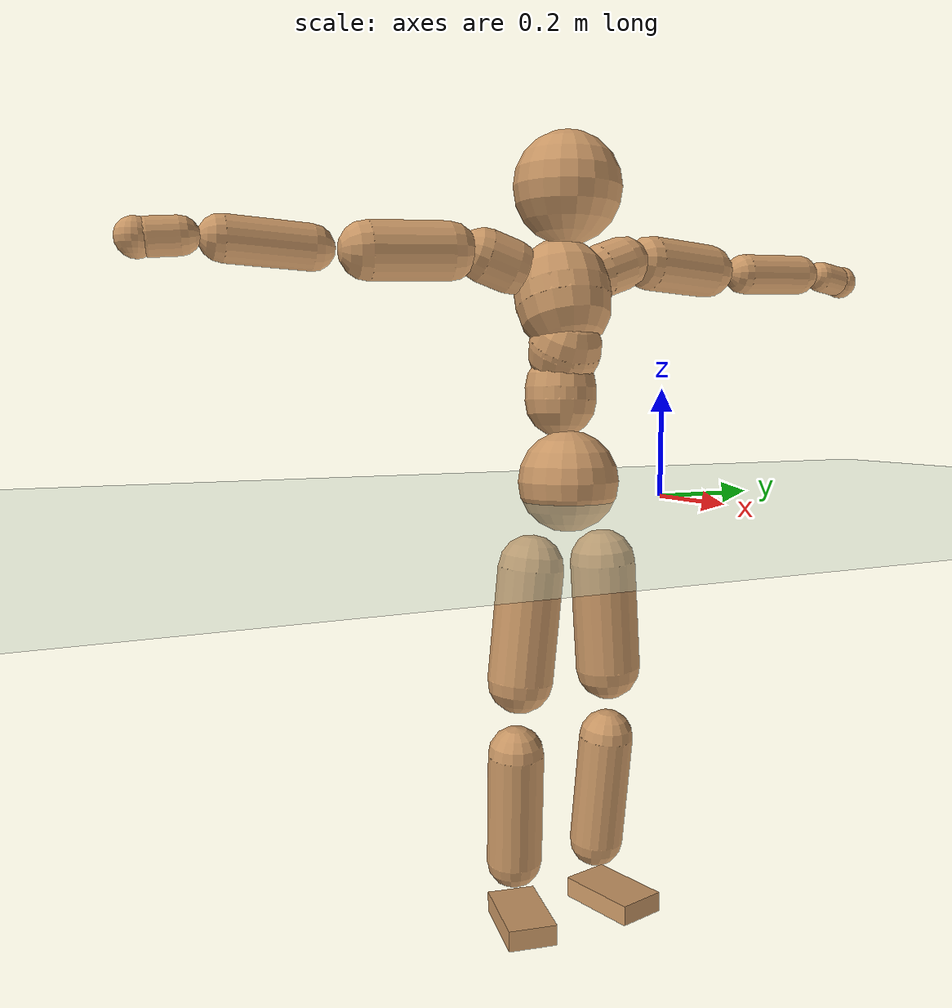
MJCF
<mujoco model="humanoid">
  <compiler coordinate="local"/>
  <default>
    <joint damping="0.0" armature="0.01" stiffness="0.0" limited="true"/>
    <geom conaffinity="1" condim="3" contype="7" margin="0.001" rgba="0.8 0.6 .4 1"/>
  </default>
  <asset>
    <texture type="skybox" builtin="gradient" rgb1=".4 .5 .6" rgb2="0 0 0" width="100" height="100"/>
    <texture builtin="flat" height="1278" mark="cross" markrgb="1 1 1" name="texgeom" random="0.01" rgb1="0.8 0.6 0.4" rgb2="0.8 0.6 0.4" type="cube" width="127"/>
    <texture builtin="checker" height="100" name="texplane" rgb1="0 0 0" rgb2="0.8 0.8 0.8" type="2d" width="100"/>
    <material name="MatPlane" reflectance="0.5" shininess="1" specular="1" texrepeat="60 60" texture="texplane"/>
    <material name="geom" texture="texgeom" texuniform="true"/>
  </asset>
  <worldbody>
    <light cutoff="100" diffuse="1 1 1" dir="-0 0 -1.3" directional="true" exponent="1" pos="0 0 1.3" specular=".1 .1 .1"/>
    <geom conaffinity="1" condim="3" name="floor" pos="0 0 0" rgba="0.8 0.9 0.8 1" size="100 100 .2" type="plane" material="MatPlane"/>
    <body name="Pelvis" pos="-0.0012 -0.2001 0.0342">
      <freejoint name="Pelvis"/>
      <geom type="sphere" contype="1" conaffinity="1" density="500" size="0.0923" pos="0.0000 0.0000 0.0000" name="Pelvis"/>
      <body name="L_Hip" pos="-0.0024 0.0704 -0.0852">
        <joint name="L_Hip_x" type="hinge" pos="0 0 0" axis="1 0 0" stiffness="800" damping="80" armature="0.02" range="-180.0000 180.0000"/>
        <joint name="L_Hip_y" type="hinge" pos="0 0 0" axis="0 1 0" stiffness="800" damping="80" armature="0.02" range="-180.0000 180.0000"/>
        <joint name="L_Hip_z" type="hinge" pos="0 0 0" axis="0 0 1" stiffness="800" damping="80" armature="0.02" range="-180.0000 180.0000"/>
        <geom type="capsule" contype="1" conaffinity="1" density="500" fromto="-0.0018 0.0055 -0.0684 -0.0071 0.0221 -0.2737" size="0.061" name="L_Hip"/>
        <body name="L_Knee" pos="-0.0088 0.0276 -0.3422">
          <joint name="L_Knee_x" type="hinge" pos="0 0 0" axis="1 0 0" stiffness="800" damping="80" armature="0.02" range="-180.0000 180.0000"/>
          <joint name="L_Knee_y" type="hinge" pos="0 0 0" axis="0 1 0" stiffness="800" damping="80" armature="0.02" range="-180.0000 180.0000"/>
          <joint name="L_Knee_z" type="hinge" pos="0 0 0" axis="0 0 1" stiffness="800" damping="80" armature="0.02" range="-180.0000 180.0000"/>
          <geom type="capsule" contype="1" conaffinity="1" density="500" fromto="-0.0082 -0.0021 -0.0722 -0.0330 -0.0084 -0.2887" size="0.052" name="L_Knee"/>
          <body name="L_Ankle" pos="-0.0412 -0.0105 -0.3609">
            <joint name="L_Ankle_x" type="hinge" pos="0 0 0" axis="1 0 0" stiffness="800" damping="80" armature="0.02" range="-180.0000 180.0000"/>
            <joint name="L_Ankle_y" type="hinge" pos="0 0 0" axis="0 1 0" stiffness="800" damping="80" armature="0.02" range="-180.0000 180.0000"/>
            <joint name="L_Ankle_z" type="hinge" pos="0 0 0" axis="0 0 1" stiffness="800" damping="80" armature="0.02" range="-180.0000 180.0000"/>
            <geom type="box" contype="1" conaffinity="1" density="500" pos="0.0555 0.0125 -0.0263" size="0.0812 0.0463 0.019" quat="0.9939 0.0000 0.0000 0.1105" name="L_Ankle"/>
            <body name="L_Toe" pos="0.1111 0.025 -0.0526">
              <joint name="L_Toe_x" type="hinge" pos="0 0 0" axis="1 0 0" stiffness="500" damping="50" armature="0.02" range="-180.0000 180.0000"/>
              <joint name="L_Toe_y" type="hinge" pos="0 0 0" axis="0 1 0" stiffness="500" damping="50" armature="0.02" range="-180.0000 180.0000"/>
              <joint name="L_Toe_z" type="hinge" pos="0 0 0" axis="0 0 1" stiffness="500" damping="50" armature="0.02" range="-180.0000 180.0000"/>
              <geom type="box" contype="1" conaffinity="1" density="500" pos="0.0000 0.0000 0.0264" size="0.0009 0.0023 0.001" quat="0.9931 0.0000 0.0000 0.1169" name="L_Toe"/>
            </body>
          </body>
        </body>
      </body>
      <body name="R_Hip" pos="0 -0.0686 -0.0849">
        <joint name="R_Hip_x" type="hinge" pos="0 0 0" axis="1 0 0" stiffness="800" damping="80" armature="0.02" range="-180.0000 180.0000"/>
        <joint name="R_Hip_y" type="hinge" pos="0 0 0" axis="0 1 0" stiffness="800" damping="80" armature="0.02" range="-180.0000 180.0000"/>
        <joint name="R_Hip_z" type="hinge" pos="0 0 0" axis="0 0 1" stiffness="800" damping="80" armature="0.02" range="-180.0000 180.0000"/>
        <geom type="capsule" contype="1" conaffinity="1" density="500" fromto="-0.0021 -0.0064 -0.0694 -0.0085 -0.0257 -0.2776" size="0.0604" name="R_Hip"/>
        <body name="R_Knee" pos="-0.0106 -0.0322 -0.3471">
          <joint name="R_Knee_x" type="hinge" pos="0 0 0" axis="1 0 0" stiffness="800" damping="80" armature="0.02" range="-180.0000 180.0000"/>
          <joint name="R_Knee_y" type="hinge" pos="0 0 0" axis="0 1 0" stiffness="800" damping="80" armature="0.02" range="-180.0000 180.0000"/>
          <joint name="R_Knee_z" type="hinge" pos="0 0 0" axis="0 0 1" stiffness="800" damping="80" armature="0.02" range="-180.0000 180.0000"/>
          <geom type="capsule" contype="1" conaffinity="1" density="500" fromto="-0.0082 0.0024 -0.0723 -0.0327 0.0096 -0.2893" size="0.0522" name="R_Knee"/>
          <body name="R_Ankle" pos="-0.0409 0.012 -0.3617">
            <joint name="R_Ankle_x" type="hinge" pos="0 0 0" axis="1 0 0" stiffness="800" damping="80" armature="0.02" range="-180.0000 180.0000"/>
            <joint name="R_Ankle_y" type="hinge" pos="0 0 0" axis="0 1 0" stiffness="800" damping="80" armature="0.02" range="-180.0000 180.0000"/>
            <joint name="R_Ankle_z" type="hinge" pos="0 0 0" axis="0 0 1" stiffness="800" damping="80" armature="0.02" range="-180.0000 180.0000"/>
            <geom type="box" contype="1" conaffinity="1" density="500" pos="0.0572 -0.0114 -0.0218" size="0.0815 0.0452 0.0192" quat="0.9952 0.0000 0.0000 -0.0980" name="R_Ankle"/>
            <body name="R_Toe" pos="0.1144 -0.0228 -0.0436">
              <joint name="R_Toe_x" type="hinge" pos="0 0 0" axis="1 0 0" stiffness="500" damping="50" armature="0.02" range="-180.0000 180.0000"/>
              <joint name="R_Toe_y" type="hinge" pos="0 0 0" axis="0 1 0" stiffness="500" damping="50" armature="0.02" range="-180.0000 180.0000"/>
              <joint name="R_Toe_z" type="hinge" pos="0 0 0" axis="0 0 1" stiffness="500" damping="50" armature="0.02" range="-180.0000 180.0000"/>
              <geom type="box" contype="1" conaffinity="1" density="500" pos="0.0000 0.0000 0.0233" size="0.0009 0.0023 0.001" quat="0.9961 0.0000 0.0000 -0.0881" name="R_Toe"/>
            </body>
          </body>
        </body>
      </body>
      <body name="Torso" pos="-0.0264 -0.0021 0.0989">
        <joint name="Torso_x" type="hinge" pos="0 0 0" axis="1 0 0" stiffness="1000" damping="100" armature="0.02" range="-180.0000 180.0000"/>
        <joint name="Torso_y" type="hinge" pos="0 0 0" axis="0 1 0" stiffness="1000" damping="100" armature="0.02" range="-180.0000 180.0000"/>
        <joint name="Torso_z" type="hinge" pos="0 0 0" axis="0 0 1" stiffness="1000" damping="100" armature="0.02" range="-180.0000 180.0000"/>
        <geom type="capsule" contype="1" conaffinity="1" density="500" fromto="-0.0025 0.0018 0.0690 -0.0017 0.0012 0.0460" size="0.065565" name="Torso"/>
        <body name="Spine" pos="-0.0042 0.003 0.115">
          <joint name="Spine_x" type="hinge" pos="0 0 0" axis="1 0 0" stiffness="1000" damping="100" armature="0.02" range="-180.0000 180.0000"/>
          <joint name="Spine_y" type="hinge" pos="0 0 0" axis="0 1 0" stiffness="1000" damping="100" armature="0.02" range="-180.0000 180.0000"/>
          <joint name="Spine_z" type="hinge" pos="0 0 0" axis="0 0 1" stiffness="1000" damping="100" armature="0.02" range="-180.0000 180.0000"/>
          <geom type="capsule" contype="1" conaffinity="1" density="500" fromto="0.0159 0.0013 0.0276 0.0106 0.0009 0.0184" size="0.066309" name="Spine"/>
          <body name="Chest" pos="0.0266 0.0022 0.046">
            <joint name="Chest_x" type="hinge" pos="0 0 0" axis="1 0 0" stiffness="1000" damping="100" armature="0.02" range="-180.0000 180.0000"/>
            <joint name="Chest_y" type="hinge" pos="0 0 0" axis="0 1 0" stiffness="1000" damping="100" armature="0.02" range="-180.0000 180.0000"/>
            <joint name="Chest_z" type="hinge" pos="0 0 0" axis="0 0 1" stiffness="1000" damping="100" armature="0.02" range="-180.0000 180.0000"/>
            <geom type="capsule" contype="1" conaffinity="1" density="500" fromto="-0.0268 -0.0009 0.0861 -0.0179 -0.0006 0.0574" size="0.08742" name="Chest"/>
            <body name="Neck" pos="-0.052 -0.0023 0.2008">
              <joint name="Neck_x" type="hinge" pos="0 0 0" axis="1 0 0" stiffness="500" damping="50" armature="0.02" range="-180.0000 180.0000"/>
              <joint name="Neck_y" type="hinge" pos="0 0 0" axis="0 1 0" stiffness="500" damping="50" armature="0.02" range="-180.0000 180.0000"/>
              <joint name="Neck_z" type="hinge" pos="0 0 0" axis="0 0 1" stiffness="500" damping="50" armature="0.02" range="-180.0000 180.0000"/>
              <geom type="capsule" contype="1" conaffinity="1" density="500" fromto="0.0093 0.0004 0.0112 0.0371 0.0014 0.0449" size="0.037572" name="Neck"/>
              <body name="Head" pos="0.0464 0.0018 0.0561">
                <joint name="Head_x" type="hinge" pos="0 0 0" axis="1 0 0" stiffness="500" damping="50" armature="0.02" range="-180.0000 180.0000"/>
                <joint name="Head_y" type="hinge" pos="0 0 0" axis="0 1 0" stiffness="500" damping="50" armature="0.02" range="-180.0000 180.0000"/>
                <joint name="Head_z" type="hinge" pos="0 0 0" axis="0 0 1" stiffness="500" damping="50" armature="0.02" range="-180.0000 180.0000"/>
                <geom type="sphere" contype="1" conaffinity="1" density="500" size="0.0976" pos="0.0000 0.0000 0.0000" name="Head"/>
              </body>
            </body>
            <body name="L_Thorax" pos="-0.039 0.0718 0.1154">
              <joint name="L_Thorax_x" type="hinge" pos="0 0 0" axis="1 0 0" stiffness="500" damping="50" armature="0.02" range="-180.0000 180.0000"/>
              <joint name="L_Thorax_y" type="hinge" pos="0 0 0" axis="0 1 0" stiffness="500" damping="50" armature="0.02" range="-180.0000 180.0000"/>
              <joint name="L_Thorax_z" type="hinge" pos="0 0 0" axis="0 0 1" stiffness="500" damping="50" armature="0.02" range="-180.0000 180.0000"/>
              <geom type="capsule" contype="1" conaffinity="1" density="500" fromto="-0.0015 0.0166 0.0060 -0.0058 0.0663 0.0240" size="0.0488" name="L_Thorax"/>
              <body name="L_Shoulder" pos="-0.0073 0.0829 0.03">
                <joint name="L_Shoulder_x" type="hinge" pos="0 0 0" axis="1 0 0" stiffness="500" damping="50" armature="0.02" range="-720.0000 720.0000"/>
                <joint name="L_Shoulder_y" type="hinge" pos="0 0 0" axis="0 1 0" stiffness="500" damping="50" armature="0.02" range="-720.0000 720.0000"/>
                <joint name="L_Shoulder_z" type="hinge" pos="0 0 0" axis="0 0 1" stiffness="500" damping="50" armature="0.02" range="-720.0000 720.0000"/>
                <geom type="capsule" contype="1" conaffinity="1" density="500" fromto="-0.0055 0.0483 -0.0019 -0.0220 0.1930 -0.0078" size="0.0503" name="L_Shoulder"/>
                <body name="L_Elbow" pos="-0.0275 0.2413 -0.0097">
                  <joint name="L_Elbow_x" type="hinge" pos="0 0 0" axis="1 0 0" stiffness="500" damping="50" armature="0.02" range="-720.0000 720.0000"/>
                  <joint name="L_Elbow_y" type="hinge" pos="0 0 0" axis="0 1 0" stiffness="500" damping="50" armature="0.02" range="-720.0000 720.0000"/>
                  <joint name="L_Elbow_z" type="hinge" pos="0 0 0" axis="0 0 1" stiffness="500" damping="50" armature="0.02" range="-720.0000 720.0000"/>
                  <geom type="capsule" contype="1" conaffinity="1" density="500" fromto="0.0001 0.0467 0.0017 0.0004 0.1868 0.0068" size="0.039" name="L_Elbow"/>
                  <body name="L_Wrist" pos="0.0005 0.2335 0.0086">
                    <joint name="L_Wrist_x" type="hinge" pos="0 0 0" axis="1 0 0" stiffness="300" damping="30" armature="0.02" range="-180.0000 180.0000"/>
                    <joint name="L_Wrist_y" type="hinge" pos="0 0 0" axis="0 1 0" stiffness="300" damping="30" armature="0.02" range="-180.0000 180.0000"/>
                    <joint name="L_Wrist_z" type="hinge" pos="0 0 0" axis="0 0 1" stiffness="300" damping="30" armature="0.02" range="-180.0000 180.0000"/>
                    <geom type="capsule" contype="1" conaffinity="1" density="500" fromto="-0.0027 0.0162 -0.0020 -0.0107 0.0648 -0.0078" size="0.0306" name="L_Wrist"/>
                    <body name="L_Hand" pos="-0.0134 0.081 -0.0098">
                      <joint name="L_Hand_x" type="hinge" pos="0 0 0" axis="1 0 0" stiffness="300" damping="30" armature="0.02" range="-180.0000 180.0000"/>
                      <joint name="L_Hand_y" type="hinge" pos="0 0 0" axis="0 1 0" stiffness="300" damping="30" armature="0.02" range="-180.0000 180.0000"/>
                      <joint name="L_Hand_z" type="hinge" pos="0 0 0" axis="0 0 1" stiffness="300" damping="30" armature="0.02" range="-180.0000 180.0000"/>
                      <geom type="sphere" contype="1" conaffinity="1" density="500" size="0.0327" pos="0.0000 0.0000 0.0000" name="L_Hand"/>
                    </body>
                  </body>
                </body>
              </body>
            </body>
            <body name="R_Thorax" pos="-0.0429 -0.0738 0.1141">
              <joint name="R_Thorax_x" type="hinge" pos="0 0 0" axis="1 0 0" stiffness="500" damping="50" armature="0.02" range="-180.0000 180.0000"/>
              <joint name="R_Thorax_y" type="hinge" pos="0 0 0" axis="0 1 0" stiffness="500" damping="50" armature="0.02" range="-180.0000 180.0000"/>
              <joint name="R_Thorax_z" type="hinge" pos="0 0 0" axis="0 0 1" stiffness="500" damping="50" armature="0.02" range="-180.0000 180.0000"/>
              <geom type="capsule" contype="1" conaffinity="1" density="500" fromto="-0.0019 -0.0172 0.0059 -0.0074 -0.0689 0.0238" size="0.048" name="R_Thorax"/>
              <body name="R_Shoulder" pos="-0.0093 -0.0861 0.0297">
                <joint name="R_Shoulder_x" type="hinge" pos="0 0 0" axis="1 0 0" stiffness="500" damping="50" armature="0.02" range="-720.0000 720.0000"/>
                <joint name="R_Shoulder_y" type="hinge" pos="0 0 0" axis="0 1 0" stiffness="500" damping="50" armature="0.02" range="-720.0000 720.0000"/>
                <joint name="R_Shoulder_z" type="hinge" pos="0 0 0" axis="0 0 1" stiffness="500" damping="50" armature="0.02" range="-720.0000 720.0000"/>
                <geom type="capsule" contype="1" conaffinity="1" density="500" fromto="-0.0040 -0.0471 -0.0020 -0.0162 -0.1886 -0.0078" size="0.0512" name="R_Shoulder"/>
                <body name="R_Elbow" pos="-0.0202 -0.2357 -0.0098">
                  <joint name="R_Elbow_x" type="hinge" pos="0 0 0" axis="1 0 0" stiffness="500" damping="50" armature="0.02" range="-720.0000 720.0000"/>
                  <joint name="R_Elbow_y" type="hinge" pos="0 0 0" axis="0 1 0" stiffness="500" damping="50" armature="0.02" range="-720.0000 720.0000"/>
                  <joint name="R_Elbow_z" type="hinge" pos="0 0 0" axis="0 0 1" stiffness="500" damping="50" armature="0.02" range="-720.0000 720.0000"/>
                  <geom type="capsule" contype="1" conaffinity="1" density="500" fromto="-0.0004 -0.0476 0.0018 -0.0017 -0.1903 0.0073" size="0.0388" name="R_Elbow"/>
                  <body name="R_Wrist" pos="-0.0022 -0.2379 0.0092">
                    <joint name="R_Wrist_x" type="hinge" pos="0 0 0" axis="1 0 0" stiffness="300" damping="30" armature="0.02" range="-180.0000 180.0000"/>
                    <joint name="R_Wrist_y" type="hinge" pos="0 0 0" axis="0 1 0" stiffness="300" damping="30" armature="0.02" range="-180.0000 180.0000"/>
                    <joint name="R_Wrist_z" type="hinge" pos="0 0 0" axis="0 0 1" stiffness="300" damping="30" armature="0.02" range="-180.0000 180.0000"/>
                    <geom type="capsule" contype="1" conaffinity="1" density="500" fromto="-0.0021 -0.0162 -0.0015 -0.0085 -0.0648 -0.0058" size="0.0312" name="R_Wrist"/>
                    <body name="R_Hand" pos="-0.0106 -0.081 -0.0073">
                      <joint name="R_Hand_x" type="hinge" pos="0 0 0" axis="1 0 0" stiffness="300" damping="30" armature="0.02" range="-180.0000 180.0000"/>
                      <joint name="R_Hand_y" type="hinge" pos="0 0 0" axis="0 1 0" stiffness="300" damping="30" armature="0.02" range="-180.0000 180.0000"/>
                      <joint name="R_Hand_z" type="hinge" pos="0 0 0" axis="0 0 1" stiffness="300" damping="30" armature="0.02" range="-180.0000 180.0000"/>
                      <geom type="sphere" contype="1" conaffinity="1" density="500" size="0.0326" pos="0.0000 0.0000 0.0000" name="R_Hand"/>
                    </body>
                  </body>
                </body>
              </body>
            </body>
          </body>
        </body>
      </body>
    </body>
  </worldbody>
  <actuator>
    <motor name="L_Hip_x" joint="L_Hip_x" gear="500"/>
    <motor name="L_Hip_y" joint="L_Hip_y" gear="500"/>
    <motor name="L_Hip_z" joint="L_Hip_z" gear="500"/>
    <motor name="L_Knee_x" joint="L_Knee_x" gear="500"/>
    <motor name="L_Knee_y" joint="L_Knee_y" gear="500"/>
    <motor name="L_Knee_z" joint="L_Knee_z" gear="500"/>
    <motor name="L_Ankle_x" joint="L_Ankle_x" gear="500"/>
    <motor name="L_Ankle_y" joint="L_Ankle_y" gear="500"/>
    <motor name="L_Ankle_z" joint="L_Ankle_z" gear="500"/>
    <motor name="L_Toe_x" joint="L_Toe_x" gear="500"/>
    <motor name="L_Toe_y" joint="L_Toe_y" gear="500"/>
    <motor name="L_Toe_z" joint="L_Toe_z" gear="500"/>
    <motor name="R_Hip_x" joint="R_Hip_x" gear="500"/>
    <motor name="R_Hip_y" joint="R_Hip_y" gear="500"/>
    <motor name="R_Hip_z" joint="R_Hip_z" gear="500"/>
    <motor name="R_Knee_x" joint="R_Knee_x" gear="500"/>
    <motor name="R_Knee_y" joint="R_Knee_y" gear="500"/>
    <motor name="R_Knee_z" joint="R_Knee_z" gear="500"/>
    <motor name="R_Ankle_x" joint="R_Ankle_x" gear="500"/>
    <motor name="R_Ankle_y" joint="R_Ankle_y" gear="500"/>
    <motor name="R_Ankle_z" joint="R_Ankle_z" gear="500"/>
    <motor name="R_Toe_x" joint="R_Toe_x" gear="500"/>
    <motor name="R_Toe_y" joint="R_Toe_y" gear="500"/>
    <motor name="R_Toe_z" joint="R_Toe_z" gear="500"/>
    <motor name="Torso_x" joint="Torso_x" gear="500"/>
    <motor name="Torso_y" joint="Torso_y" gear="500"/>
    <motor name="Torso_z" joint="Torso_z" gear="500"/>
    <motor name="Spine_x" joint="Spine_x" gear="500"/>
    <motor name="Spine_y" joint="Spine_y" gear="500"/>
    <motor name="Spine_z" joint="Spine_z" gear="500"/>
    <motor name="Chest_x" joint="Chest_x" gear="500"/>
    <motor name="Chest_y" joint="Chest_y" gear="500"/>
    <motor name="Chest_z" joint="Chest_z" gear="500"/>
    <motor name="Neck_x" joint="Neck_x" gear="500"/>
    <motor name="Neck_y" joint="Neck_y" gear="500"/>
    <motor name="Neck_z" joint="Neck_z" gear="500"/>
    <motor name="Head_x" joint="Head_x" gear="500"/>
    <motor name="Head_y" joint="Head_y" gear="500"/>
    <motor name="Head_z" joint="Head_z" gear="500"/>
    <motor name="L_Thorax_x" joint="L_Thorax_x" gear="500"/>
    <motor name="L_Thorax_y" joint="L_Thorax_y" gear="500"/>
    <motor name="L_Thorax_z" joint="L_Thorax_z" gear="500"/>
    <motor name="L_Shoulder_x" joint="L_Shoulder_x" gear="500"/>
    <motor name="L_Shoulder_y" joint="L_Shoulder_y" gear="500"/>
    <motor name="L_Shoulder_z" joint="L_Shoulder_z" gear="500"/>
    <motor name="L_Elbow_x" joint="L_Elbow_x" gear="500"/>
    <motor name="L_Elbow_y" joint="L_Elbow_y" gear="500"/>
    <motor name="L_Elbow_z" joint="L_Elbow_z" gear="500"/>
    <motor name="L_Wrist_x" joint="L_Wrist_x" gear="500"/>
    <motor name="L_Wrist_y" joint="L_Wrist_y" gear="500"/>
    <motor name="L_Wrist_z" joint="L_Wrist_z" gear="500"/>
    <motor name="L_Hand_x" joint="L_Hand_x" gear="500"/>
    <motor name="L_Hand_y" joint="L_Hand_y" gear="500"/>
    <motor name="L_Hand_z" joint="L_Hand_z" gear="500"/>
    <motor name="R_Thorax_x" joint="R_Thorax_x" gear="500"/>
    <motor name="R_Thorax_y" joint="R_Thorax_y" gear="500"/>
    <motor name="R_Thorax_z" joint="R_Thorax_z" gear="500"/>
    <motor name="R_Shoulder_x" joint="R_Shoulder_x" gear="500"/>
    <motor name="R_Shoulder_y" joint="R_Shoulder_y" gear="500"/>
    <motor name="R_Shoulder_z" joint="R_Shoulder_z" gear="500"/>
    <motor name="R_Elbow_x" joint="R_Elbow_x" gear="500"/>
    <motor name="R_Elbow_y" joint="R_Elbow_y" gear="500"/>
    <motor name="R_Elbow_z" joint="R_Elbow_z" gear="500"/>
    <motor name="R_Wrist_x" joint="R_Wrist_x" gear="500"/>
    <motor name="R_Wrist_y" joint="R_Wrist_y" gear="500"/>
    <motor name="R_Wrist_z" joint="R_Wrist_z" gear="500"/>
    <motor name="R_Hand_x" joint="R_Hand_x" gear="500"/>
    <motor name="R_Hand_y" joint="R_Hand_y" gear="500"/>
    <motor name="R_Hand_z" joint="R_Hand_z" gear="500"/>
  </actuator>
  <contact>
    <exclude body1="Torso" body2="Chest"/>
    <exclude body1="Head" body2="Chest"/>
    <exclude body1="R_Knee" body2="R_Toe"/>
    <exclude body1="R_Knee" body2="L_Ankle"/>
    <exclude body1="R_Knee" body2="L_Toe"/>
    <exclude body1="L_Knee" body2="L_Toe"/>
    <exclude body1="L_Knee" body2="R_Ankle"/>
    <exclude body1="L_Knee" body2="R_Toe"/>
    <exclude body1="L_Shoulder" body2="Chest"/>
    <exclude body1="R_Shoulder" body2="Chest"/>
  </contact>
  <sensor/>
  <size njmax="700" nconmax="700"/>
</mujoco>
